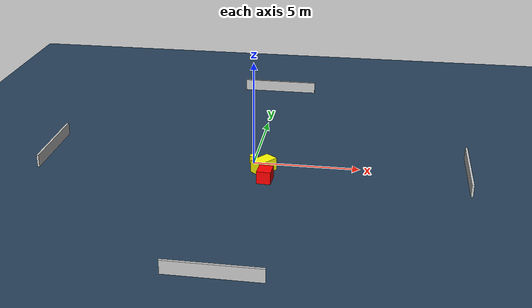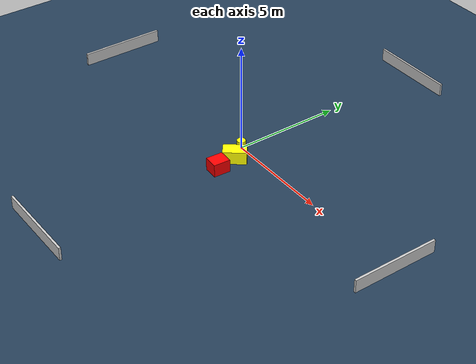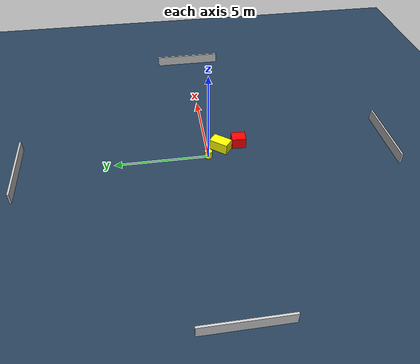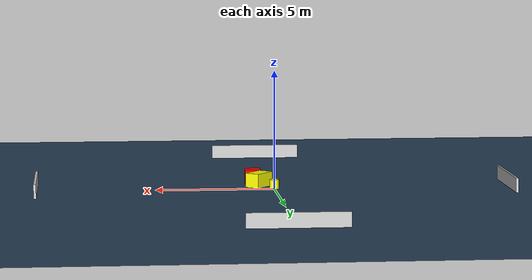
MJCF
<?xml version="1.0" ?>
<mujoco model="generated_environment">
  <option timestep="0.01" integrator="RK4" cone="elliptic"/>
  <default>
    <geom density="1"/>
  </default>
  <asset>
    <texture builtin="gradient" height="3072" name="skybox" rgb1="0.3 0.5 0.7" rgb2="0 0 0" type="skybox" width="512"/>
    <texture builtin="checker" height="300" name="groundplane" rgb1="0.2 0.3 0.4" rgb2="0.1 0.2 0.3" type="2d" width="300"/>
    <material name="groundplane" reflectance="0.2" texrepeat="5 5" texture="groundplane"/>
  </asset>
  <worldbody>
    <light dir="0 0 -1" directional="true" pos="0 0 1.5"/>
    <geom condim="3" friction="0.5 0.005 0.001" material="groundplane" name="floor" pos="0 0 0" size="0 0 0.05" type="plane"/>
    <body name="walls">
      <geom name="wall_1" condim="4" pos="-10.0 0.0 0.3" rgba="0.800000011920929 0.800000011920929 0.800000011920929 1.0" size="0.05 2.0 0.3" type="box"/>
      <geom name="wall_2" condim="4" pos="10.0 0.0 0.3" rgba="0.800000011920929 0.800000011920929 0.800000011920929 1.0" size="0.05 2.0 0.3" type="box"/>
      <geom name="wall_3" condim="4" pos="0.0 -10.0 0.3" rgba="0.800000011920929 0.800000011920929 0.800000011920929 1.0" size="2.0 0.05 0.3" type="box"/>
      <geom name="wall_4" condim="4" pos="0.0 10.0 0.3" rgba="0.800000011920929 0.800000011920929 0.800000011920929 1.0" size="2.0 0.05 0.3" type="box"/>
    </body>
    <body name="robot">
      <joint name="joint_x" type="slide" pos="0 0 0" axis="1 0 0"/>
      <joint name="joint_y" type="slide" pos="0 0 0" axis="0 1 0"/>
      <geom name="robot" type="cylinder" pos="0.0 0.0 0.2" size="0.2 0.2 0.0" mass="5.0" friction="1.0 0.005 0.0001" condim="4" rgba="1.0 1.0 0.0 1.0"/>
    </body>
    <body name="obstacle_1_movable">
      <geom name="obstacle_1_movable" condim="4" pos="0.581390934211815 -0.7589429666653241 0.3" euler="0 0 141.53226942187123" friction="0.0 0.005 0.001" rgba="1.0 1.0 0.0 1.0" size="0.3177374530684347 0.5291680278055105 0.3" type="box" mass="0.1"/>
      <joint type="free"/>
    </body>
    <body name="obstacle_2_static">
      <geom name="obstacle_2_static" condim="4" pos="0.7822043856678254 -1.7752545359431908 0.3" euler="0 0 266.90028313900626" friction="0.0 0.005 0.001" rgba="1.0 0.0 0.0 1.0" size="0.38689943125967396 0.32802305139517207 0.3" type="box"/>
    </body>
  </worldbody>
  <actuator>
    <motor name="actuator_x" joint="joint_x" gear="1" ctrlrange="-1 1"/>
    <motor name="actuator_y" joint="joint_y" gear="1" ctrlrange="-1 1"/>
  </actuator>
</mujoco>
